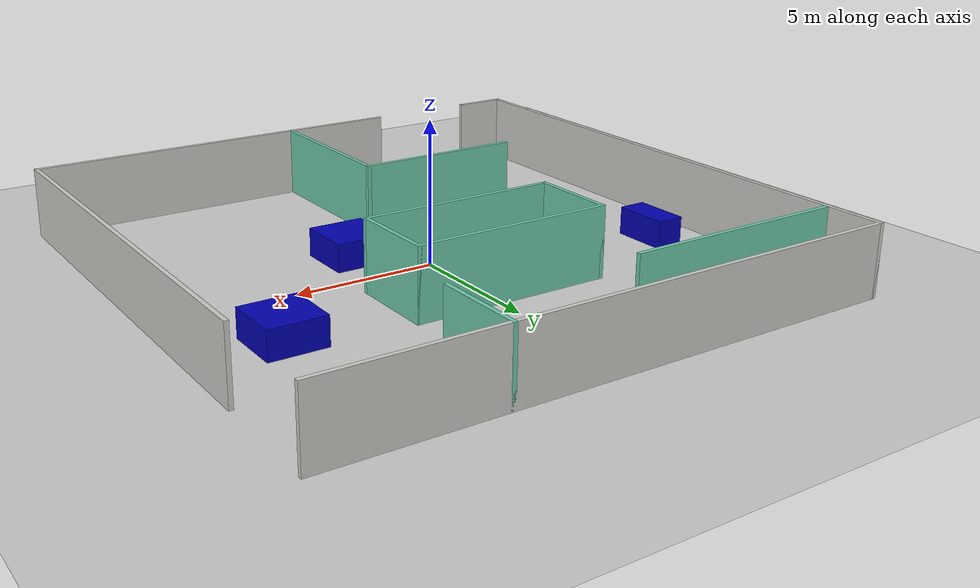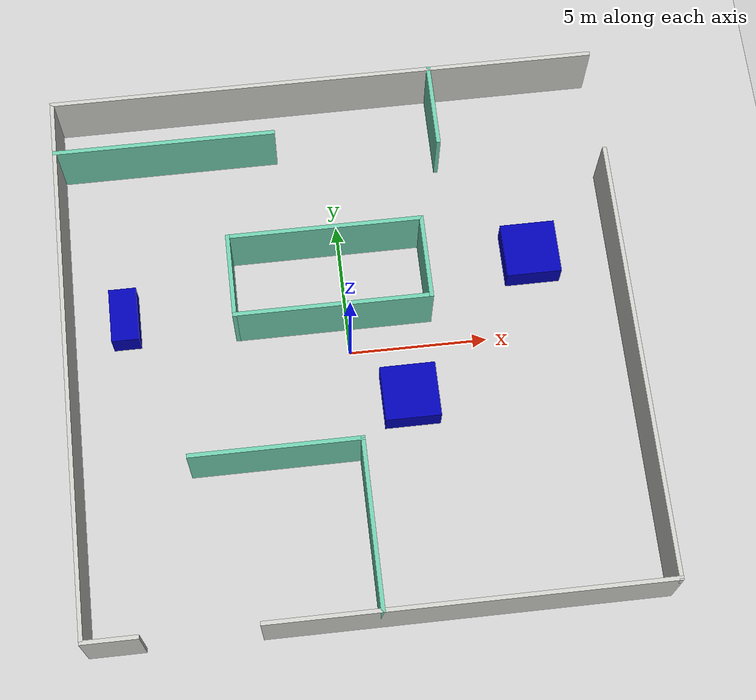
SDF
<sdf version="1.7">
 <world name="default">
  <light name="sun" type="directional">
   <pose>0 0 10 0 -0 0</pose>
   <diffuse>0.8 0.8 0.8 1</diffuse>
   <specular>0.2 0.2 0.2 1</specular>
   <attenuation>
    <range>1000</range>
    <constant>0.9</constant>
    <linear>0.01</linear>
    <quadratic>0.001</quadratic>
   </attenuation>
   <direction>-0.5 0.1 -0.9</direction>
   <spot><inner_angle>0</inner_angle><outer_angle>0</outer_angle><falloff>0</falloff></spot>
  </light>
  <model name="ground_plane">
   <static>1</static>
   <link name="link">
    <collision name="collision">
     <geometry><plane><normal>0 0 1</normal><size>100 100</size></plane></geometry>
     <surface>
      <contact><collide_bitmask>65535</collide_bitmask></contact>
      <friction><ode><mu>100</mu><mu2>50</mu2></ode></friction>
     </surface>
    </collision>
    <visual name="visual">
     <cast_shadows>0</cast_shadows>
     <geometry><plane><normal>0 0 1</normal><size>100 100</size></plane></geometry>
     <material>
      <script><uri>file://media/materials/scripts/gazebo.material</uri><name>Gazebo/Grey</name></script>
     </material>
    </visual>
   </link>
  </model>
  <gravity>0 0 -9.8</gravity>
  <magnetic_field>6e-06 2.3e-05 -4.2e-05</magnetic_field>
  <atmosphere type="adiabatic"/>
  <physics type="ode">
   <max_step_size>0.001</max_step_size>
   <real_time_factor>1</real_time_factor>
   <real_time_update_rate>1000</real_time_update_rate>
  </physics>
  <scene><ambient>0.4 0.4 0.4 1</ambient><background>0.7 0.7 0.7 1</background><shadows>1</shadows></scene>
  <audio><device>default</device></audio>
  <spherical_coordinates>
   <surface_model>EARTH_WGS84</surface_model>
   <latitude_deg>0</latitude_deg>
   <longitude_deg>0</longitude_deg>
   <elevation>0</elevation>
   <heading_deg>0</heading_deg>
  </spherical_coordinates>
  <model name="Obstacle_Course">
   <link name="Wall_0">
    <collision name="Wall_0_Collision">
     <geometry><box><size>20.15 0.15 2.5</size></box></geometry>
     <pose>0 0 1.25 0 -0 0</pose>
    </collision>
    <visual name="Wall_0_Visual">
     <pose>0 0 1.25 0 -0 0</pose>
     <geometry><box><size>20.15 0.15 2.5</size></box></geometry>
     <material>
      <script><uri>file://media/materials/scripts/gazebo.material</uri><name>Gazebo/CeilingTiled</name></script>
      <ambient>0.760784 0.662745 0.627451 1</ambient>
     </material>
     <meta><layer>0</layer></meta>
    </visual>
    <pose>-10 0 0 0 -0 1.5708</pose>
   </link>
   <link name="Wall_10">
    <collision name="Wall_10_Collision">
     <geometry><box><size>14.15 0.15 2.5</size></box></geometry>
     <pose>0 0 1.25 0 -0 0</pose>
    </collision>
    <visual name="Wall_10_Visual">
     <pose>0 0 1.25 0 -0 0</pose>
     <geometry><box><size>14.15 0.15 2.5</size></box></geometry>
     <material>
      <script><uri>file://media/materials/scripts/gazebo.material</uri><name>Gazebo/CeilingTiled</name></script>
      <ambient>0.760784 0.662745 0.627451 1</ambient>
     </material>
     <meta><layer>0</layer></meta>
    </visual>
    <pose>3 -10 0 0 -0 0</pose>
   </link>
   <link name="Wall_12">
    <collision name="Wall_12_Collision">
     <geometry><box><size>16.15 0.15 2.5</size></box></geometry>
     <pose>0 0 1.25 0 -0 0</pose>
    </collision>
    <visual name="Wall_12_Visual">
     <pose>0 0 1.25 0 -0 0</pose>
     <geometry><box><size>16.15 0.15 2.5</size></box></geometry>
     <material>
      <script><uri>file://media/materials/scripts/gazebo.material</uri><name>Gazebo/CeilingTiled</name></script>
      <ambient>0.760784 0.662745 0.627451 1</ambient>
     </material>
     <meta><layer>0</layer></meta>
    </visual>
    <pose>10 -2 0 0 -0 1.5708</pose>
   </link>
   <link name="Wall_14">
    <collision name="Wall_14_Collision">
     <geometry><box><size>6.15 0.15 2.5</size></box></geometry>
     <pose>0 0 1.25 0 -0 0</pose>
    </collision>
    <visual name="Wall_14_Visual">
     <pose>0 0 1.25 0 -0 0</pose>
     <geometry><box><size>6.15 0.15 2.5</size></box></geometry>
     <material>
      <script><uri>file://media/materials/scripts/gazebo.material</uri><name>Gazebo/Grey</name></script>
      <ambient>0.435294 0.796078 0.67451 1</ambient>
     </material>
     <meta><layer>0</layer></meta>
    </visual>
    <pose>0 -7 0 0 -0 1.5708</pose>
   </link>
   <link name="Wall_16">
    <collision name="Wall_16_Collision">
     <geometry><box><size>6.15 0.15 2.5</size></box></geometry>
     <pose>0 0 1.25 0 -0 0</pose>
    </collision>
    <visual name="Wall_16_Visual">
     <pose>0 0 1.25 0 -0 0</pose>
     <geometry><box><size>6.15 0.15 2.5</size></box></geometry>
     <material>
      <script><uri>file://media/materials/scripts/gazebo.material</uri><name>Gazebo/Grey</name></script>
      <ambient>0.435294 0.796078 0.67451 1</ambient>
     </material>
     <meta><layer>0</layer></meta>
    </visual>
    <pose>-3 -4 0 0 -0 3.14159</pose>
   </link>
   <link name="Wall_18">
    <collision name="Wall_18_Collision">
     <geometry><box><size>7.15 0.15 2.5</size></box></geometry>
     <pose>0 0 1.25 0 -0 0</pose>
    </collision>
    <visual name="Wall_18_Visual">
     <pose>0 0 1.25 0 -0 0</pose>
     <geometry><box><size>7.15 0.15 2.5</size></box></geometry>
     <material>
      <script><uri>file://media/materials/scripts/gazebo.material</uri><name>Gazebo/Grey</name></script>
      <ambient>0.435294 0.796078 0.67451 1</ambient>
     </material>
     <meta><layer>0</layer></meta>
    </visual>
    <pose>-0.5 4 0 0 -0 0</pose>
   </link>
   <link name="Wall_19">
    <collision name="Wall_19_Collision">
     <geometry><box><size>3.15 0.15 2.5</size></box></geometry>
     <pose>0 0 1.25 0 -0 0</pose>
    </collision>
    <visual name="Wall_19_Visual">
     <pose>0 0 1.25 0 -0 0</pose>
     <geometry><box><size>3.15 0.15 2.5</size></box></geometry>
     <material>
      <script><uri>file://media/materials/scripts/gazebo.material</uri><name>Gazebo/Grey</name></script>
      <ambient>0.435294 0.796078 0.67451 1</ambient>
     </material>
     <meta><layer>0</layer></meta>
    </visual>
    <pose>3 2.5 0 0 -0 -1.5708</pose>
   </link>
   <link name="Wall_21">
    <collision name="Wall_21_Collision">
     <geometry><box><size>7.15 0.15 2.5</size></box></geometry>
     <pose>0 0 1.25 0 -0 0</pose>
    </collision>
    <visual name="Wall_21_Visual">
     <pose>0 0 1.25 0 -0 0</pose>
     <geometry><box><size>7.15 0.15 2.5</size></box></geometry>
     <material>
      <script><uri>file://media/materials/scripts/gazebo.material</uri><name>Gazebo/Grey</name></script>
      <ambient>0.435294 0.796078 0.67451 1</ambient>
     </material>
     <meta><layer>0</layer></meta>
    </visual>
    <pose>-0.5 1 0 0 -0 3.14159</pose>
   </link>
   <link name="Wall_23">
    <collision name="Wall_23_Collision">
     <geometry><box><size>3.15 0.15 2.5</size></box></geometry>
     <pose>0 0 1.25 0 -0 0</pose>
    </collision>
    <visual name="Wall_23_Visual">
     <pose>0 0 1.25 0 -0 0</pose>
     <geometry><box><size>3.15 0.15 2.5</size></box></geometry>
     <material>
      <script><uri>file://media/materials/scripts/gazebo.material</uri><name>Gazebo/Grey</name></script>
      <ambient>0.435294 0.796078 0.67451 1</ambient>
     </material>
     <meta><layer>0</layer></meta>
    </visual>
    <pose>-4 2.5 0 0 -0 -1.5708</pose>
   </link>
   <link name="Wall_25">
    <collision name="Wall_25_Collision">
     <geometry><box><size>8.15 0.15 2.5</size></box></geometry>
     <pose>0 0 1.25 0 -0 0</pose>
    </collision>
    <visual name="Wall_25_Visual">
     <pose>0 0 1.25 0 -0 0</pose>
     <geometry><box><size>8.15 0.15 2.5</size></box></geometry>
     <material>
      <script><uri>file://media/materials/scripts/gazebo.material</uri><name>Gazebo/Grey</name></script>
      <ambient>0.435294 0.796078 0.67451 1</ambient>
     </material>
     <meta><layer>0</layer></meta>
    </visual>
    <pose>-6 8 0 0 -0 0</pose>
   </link>
   <link name="Wall_27">
    <collision name="Wall_27_Collision">
     <geometry><box><size>3.15 0.15 2.5</size></box></geometry>
     <pose>0 0 1.25 0 -0 0</pose>
    </collision>
    <visual name="Wall_27_Visual">
     <pose>0 0 1.25 0 -0 0</pose>
     <geometry><box><size>3.15 0.15 2.5</size></box></geometry>
     <material>
      <script><uri>file://media/materials/scripts/gazebo.material</uri><name>Gazebo/Grey</name></script>
      <ambient>0.435294 0.796078 0.67451 1</ambient>
     </material>
     <meta><layer>0</layer></meta>
    </visual>
    <pose>4 8.5 0 0 -0 -1.5708</pose>
   </link>
   <link name="Wall_6">
    <collision name="Wall_6_Collision">
     <geometry><box><size>20.15 0.15 2.5</size></box></geometry>
     <pose>0 0 1.25 0 -0 0</pose>
    </collision>
    <visual name="Wall_6_Visual">
     <pose>0 0 1.25 0 -0 0</pose>
     <geometry><box><size>20.15 0.15 2.5</size></box></geometry>
     <material>
      <script><uri>file://media/materials/scripts/gazebo.material</uri><name>Gazebo/CeilingTiled</name></script>
      <ambient>0.760784 0.662745 0.627451 1</ambient>
     </material>
     <meta><layer>0</layer></meta>
    </visual>
    <pose>0 10 0 0 -0 0</pose>
   </link>
   <link name="Wall_8">
    <collision name="Wall_8_Collision">
     <geometry><box><size>2 0.15 2.5</size></box></geometry>
     <pose>0 0 1.25 0 -0 0</pose>
    </collision>
    <visual name="Wall_8_Visual">
     <pose>0 0 1.25 0 -0 0</pose>
     <geometry><box><size>2 0.15 2.5</size></box></geometry>
     <material>
      <script><uri>file://media/materials/scripts/gazebo.material</uri><name>Gazebo/CeilingTiled</name></script>
      <ambient>0.760784 0.662745 0.627451 1</ambient>
     </material>
     <meta><layer>0</layer></meta>
    </visual>
    <pose>-9.075 -10 0 0 -0 0</pose>
   </link>
   <static>1</static>
  </model>
  <model name="unit_box">
   <link name="link_clone">
    <inertial>
     <mass>1</mass>
     <inertia>
      <ixx>0.166667</ixx>
      <ixy>0</ixy>
      <ixz>0</ixz>
      <iyy>0.166667</iyy>
      <iyz>0</iyz>
      <izz>0.166667</izz>
     </inertia>
    </inertial>
    <pose>4.44202 5.29909 -0 0 -0 0</pose>
    <visual name="visual">
     <geometry><box><size>2 2 1</size></box></geometry>
     <material>
      <script><name>Gazebo/Grey</name><uri>file://media/materials/scripts/gazebo.material</uri></script>
      <shader type="pixel"><normal_map>__default__</normal_map></shader>
      <ambient>0 0.016 0.298 1</ambient>
      <diffuse>0 0 0.698 1</diffuse>
      <specular>0 0 0.008 1</specular>
      <emissive>0 0 0 1</emissive>
     </material>
    </visual>
    <collision name="collision">
     <geometry><box><size>2 2 1</size></box></geometry>
     <surface>
      <friction>
       <ode><mu>1</mu><mu2>1</mu2><fdir1>0 0 0</fdir1><slip1>0</slip1><slip2>0</slip2></ode>
       <torsional>
        <coefficient>1</coefficient>
        <patch_radius>0</patch_radius>
        <surface_radius>0</surface_radius>
        <use_patch_radius>1</use_patch_radius>
        <ode><slip>0</slip></ode>
       </torsional>
      </friction>
      <bounce><restitution_coefficient>0</restitution_coefficient><threshold>1e+06</threshold></bounce>
      <contact>
       <collide_without_contact>0</collide_without_contact>
       <collide_without_contact_bitmask>1</collide_without_contact_bitmask>
       <collide_bitmask>1</collide_bitmask>
       <ode>
        <soft_cfm>0</soft_cfm>
        <soft_erp>0.2</soft_erp>
        <kp>1e+13</kp>
        <kd>1</kd>
        <max_vel>0.01</max_vel>
        <min_depth>0</min_depth>
       </ode>
       <bullet>
        <split_impulse>1</split_impulse>
        <split_impulse_penetration_threshold>-0.01</split_impulse_penetration_threshold>
        <soft_cfm>0</soft_cfm>
        <soft_erp>0.2</soft_erp>
        <kp>1e+13</kp>
        <kd>1</kd>
       </bullet>
      </contact>
     </surface>
    </collision>
   </link>
   <link name="link_clone_0">
    <inertial>
     <mass>1</mass>
     <inertia>
      <ixx>0.166667</ixx>
      <ixy>0</ixy>
      <ixz>0</ixz>
      <iyy>0.166667</iyy>
      <iyz>0</iyz>
      <izz>0.166667</izz>
     </inertia>
    </inertial>
    <pose>-10.564 4.298 0 0 -0 0</pose>
    <visual name="visual">
     <geometry><box><size>1 2 1</size></box></geometry>
     <material>
      <script><name>Gazebo/Grey</name><uri>file://media/materials/scripts/gazebo.material</uri></script>
      <shader type="pixel"><normal_map>__default__</normal_map></shader>
      <ambient>0 0.016 0.298 1</ambient>
      <diffuse>0 0 0.698 1</diffuse>
      <specular>0 0 0.008 1</specular>
      <emissive>0 0 0 1</emissive>
     </material>
    </visual>
    <collision name="collision">
     <geometry><box><size>1 2 1</size></box></geometry>
     <surface>
      <friction>
       <ode><mu>1</mu><mu2>1</mu2><fdir1>0 0 0</fdir1><slip1>0</slip1><slip2>0</slip2></ode>
       <torsional>
        <coefficient>1</coefficient>
        <patch_radius>0</patch_radius>
        <surface_radius>0</surface_radius>
        <use_patch_radius>1</use_patch_radius>
        <ode><slip>0</slip></ode>
       </torsional>
      </friction>
      <bounce><restitution_coefficient>0</restitution_coefficient><threshold>1e+06</threshold></bounce>
      <contact>
       <collide_without_contact>0</collide_without_contact>
       <collide_without_contact_bitmask>1</collide_without_contact_bitmask>
       <collide_bitmask>1</collide_bitmask>
       <ode>
        <soft_cfm>0</soft_cfm>
        <soft_erp>0.2</soft_erp>
        <kp>1e+13</kp>
        <kd>1</kd>
        <max_vel>0.01</max_vel>
        <min_depth>0</min_depth>
       </ode>
       <bullet>
        <split_impulse>1</split_impulse>
        <split_impulse_penetration_threshold>-0.01</split_impulse_penetration_threshold>
        <soft_cfm>0</soft_cfm>
        <soft_erp>0.2</soft_erp>
        <kp>1e+13</kp>
        <kd>1</kd>
       </bullet>
      </contact>
     </surface>
    </collision>
   </link>
   <link name="link_clone_clone">
    <inertial>
     <mass>1</mass>
     <inertia>
      <ixx>0.166667</ixx>
      <ixy>0</ixy>
      <ixz>0</ixz>
      <iyy>0.166667</iyy>
      <iyz>0</iyz>
      <izz>0.166667</izz>
     </inertia>
    </inertial>
    <pose>-0.603877 0.284844 -0 0 -0 0</pose>
    <visual name="visual">
     <geometry><box><size>2 2 1</size></box></geometry>
     <material>
      <script><name>Gazebo/Grey</name><uri>file://media/materials/scripts/gazebo.material</uri></script>
      <shader type="pixel"><normal_map>__default__</normal_map></shader>
      <ambient>0 0.016 0.298 1</ambient>
      <diffuse>0 0 0.698 1</diffuse>
      <specular>0 0 0.008 1</specular>
      <emissive>0 0 0 1</emissive>
     </material>
    </visual>
    <collision name="collision">
     <geometry><box><size>2 2 1</size></box></geometry>
     <surface>
      <friction>
       <ode><mu>1</mu><mu2>1</mu2><fdir1>0 0 0</fdir1><slip1>0</slip1><slip2>0</slip2></ode>
       <torsional>
        <coefficient>1</coefficient>
        <patch_radius>0</patch_radius>
        <surface_radius>0</surface_radius>
        <use_patch_radius>1</use_patch_radius>
        <ode><slip>0</slip></ode>
       </torsional>
      </friction>
      <bounce><restitution_coefficient>0</restitution_coefficient><threshold>1e+06</threshold></bounce>
      <contact>
       <collide_without_contact>0</collide_without_contact>
       <collide_without_contact_bitmask>1</collide_without_contact_bitmask>
       <collide_bitmask>1</collide_bitmask>
       <ode>
        <soft_cfm>0</soft_cfm>
        <soft_erp>0.2</soft_erp>
        <kp>1e+13</kp>
        <kd>1</kd>
        <max_vel>0.01</max_vel>
        <min_depth>0</min_depth>
       </ode>
       <bullet>
        <split_impulse>1</split_impulse>
        <split_impulse_penetration_threshold>-0.01</split_impulse_penetration_threshold>
        <soft_cfm>0</soft_cfm>
        <soft_erp>0.2</soft_erp>
        <kp>1e+13</kp>
        <kd>1</kd>
       </bullet>
      </contact>
     </surface>
    </collision>
   </link>
   <static>1</static>
   <pose>2.54023 -2.27915 0.5 0 -0 0</pose>
  </model>
 </world>
</sdf>
